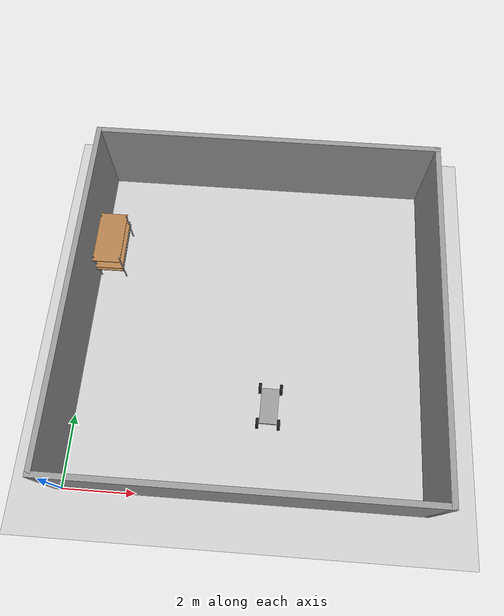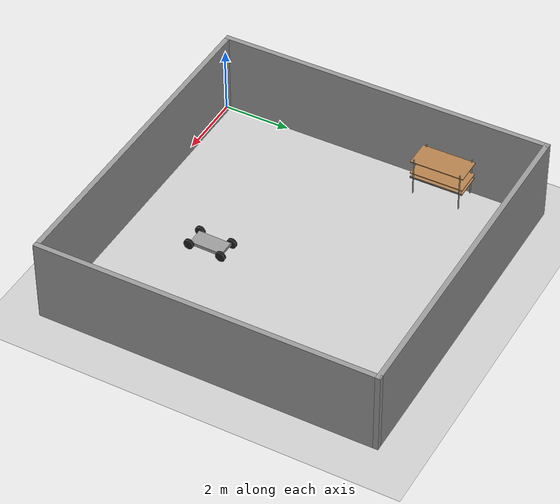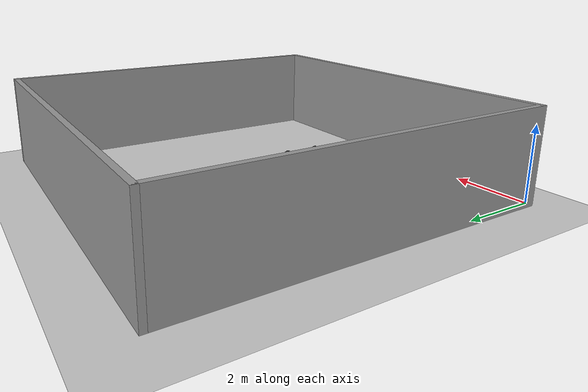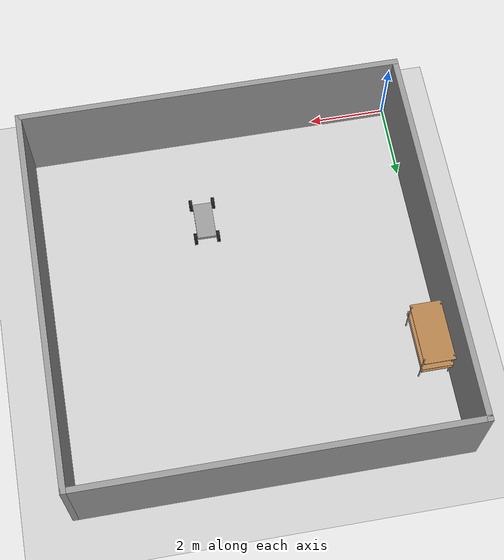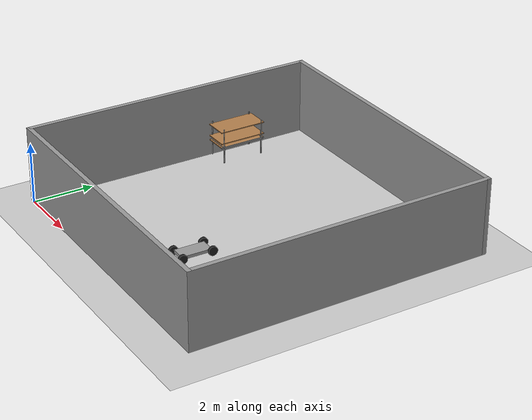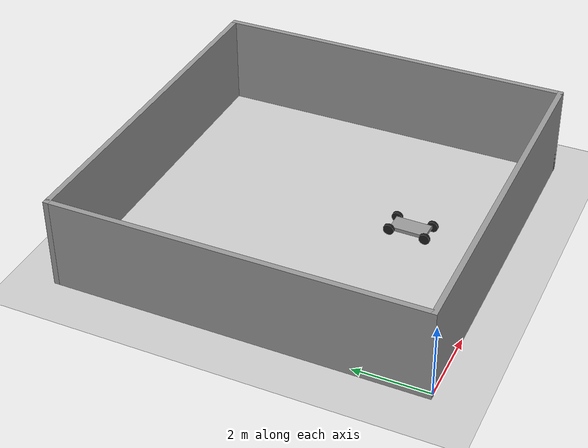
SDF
<sdf version="1.7">
 <world name="default">
  <plugin name="gazebo_ros_control" filename="libgazebo_ros_control.so"/>
  <plugin name="set_entity_state_plugin" filename="libset_entity_state.so">
   <robot_name>dynamic_obsticle</robot_name>
  </plugin>
  <light name="sun" type="directional">
   <pose>0 0 10 0 -0 0</pose>
   <diffuse>0.8 0.8 0.8 1</diffuse>
   <specular>0.2 0.2 0.2 1</specular>
   <attenuation>
    <range>1000</range>
    <constant>0.9</constant>
    <linear>0.01</linear>
    <quadratic>0.001</quadratic>
   </attenuation>
   <direction>-0.5 0.1 -0.9</direction>
   <spot><inner_angle>0</inner_angle><outer_angle>0</outer_angle><falloff>0</falloff></spot>
  </light>
  <model name="ground_plane">
   <static>1</static>
   <link name="link">
    <collision name="collision">
     <geometry><plane><normal>0 0 1</normal><size>100 100</size></plane></geometry>
     <surface><friction><ode><mu>100</mu><mu2>50</mu2></ode></friction></surface>
    </collision>
    <visual name="visual">
     <cast_shadows>0</cast_shadows>
     <geometry><plane><normal>0 0 1</normal><size>100 100</size></plane></geometry>
     <material>
      <script><uri>file://media/materials/scripts/gazebo.material</uri><name>Gazebo/Grey</name></script>
     </material>
    </visual>
   </link>
  </model>
  <gravity>0 0 -9.8</gravity>
  <magnetic_field>6e-06 2.3e-05 -4.2e-05</magnetic_field>
  <atmosphere type="adiabatic"/>
  <physics type="ode">
   <max_step_size>0.001</max_step_size>
   <real_time_factor>1</real_time_factor>
   <real_time_update_rate>1000</real_time_update_rate>
  </physics>
  <scene><ambient>0.4 0.4 0.4 1</ambient><background>0.7 0.7 0.7 1</background><shadows>1</shadows></scene>
  <audio><device>default</device></audio>
  <spherical_coordinates>
   <surface_model>EARTH_WGS84</surface_model>
   <latitude_deg>0</latitude_deg>
   <longitude_deg>0</longitude_deg>
   <elevation>0</elevation>
   <heading_deg>0</heading_deg>
  </spherical_coordinates>
  <model name="inter">
   <pose>4.83241 4.97383 0 0 -0 0</pose>
   <link name="Wall_2">
    <collision name="Wall_2_Collision">
     <geometry><box><size>10 0.15 2.5</size></box></geometry>
     <pose>0 0 1.25 0 -0 0</pose>
    </collision>
    <visual name="Wall_2_Visual">
     <pose>0 0 1.25 0 -0 0</pose>
     <geometry><box><size>10 0.15 2.5</size></box></geometry>
     <material>
      <script><uri>file://media/materials/scripts/gazebo.material</uri><name>Gazebo/Grey</name></script>
      <ambient>1 1 1 1</ambient>
     </material>
     <meta><layer>0</layer></meta>
    </visual>
    <pose>0 -4.925 0 0 -0 0</pose>
   </link>
   <link name="Wall_6">
    <collision name="Wall_6_Collision">
     <geometry><box><size>10 0.15 2.5</size></box></geometry>
     <pose>0 0 1.25 0 -0 0</pose>
    </collision>
    <visual name="Wall_6_Visual">
     <pose>0 0 1.25 0 -0 0</pose>
     <geometry><box><size>10 0.15 2.5</size></box></geometry>
     <material>
      <script><uri>file://media/materials/scripts/gazebo.material</uri><name>Gazebo/Grey</name></script>
      <ambient>1 1 1 1</ambient>
     </material>
     <meta><layer>0</layer></meta>
    </visual>
    <pose>4.925 0 0 0 -0 1.5708</pose>
   </link>
   <link name="Wall_7">
    <collision name="Wall_7_Collision">
     <geometry><box><size>10 0.15 2.5</size></box></geometry>
     <pose>0 0 1.25 0 -0 0</pose>
    </collision>
    <visual name="Wall_7_Visual">
     <pose>0 0 1.25 0 -0 0</pose>
     <geometry><box><size>10 0.15 2.5</size></box></geometry>
     <material>
      <script><uri>file://media/materials/scripts/gazebo.material</uri><name>Gazebo/Grey</name></script>
      <ambient>1 1 1 1</ambient>
     </material>
     <meta><layer>0</layer></meta>
    </visual>
    <pose>0 4.925 0 0 -0 3.14159</pose>
   </link>
   <link name="Wall_8">
    <collision name="Wall_8_Collision">
     <geometry><box><size>10 0.15 2.5</size></box></geometry>
     <pose>0 0 1.25 0 -0 0</pose>
    </collision>
    <visual name="Wall_8_Visual">
     <pose>0 0 1.25 0 -0 0</pose>
     <geometry><box><size>10 0.15 2.5</size></box></geometry>
     <material>
      <script><uri>file://media/materials/scripts/gazebo.material</uri><name>Gazebo/Grey</name></script>
      <ambient>1 1 1 1</ambient>
     </material>
     <meta><layer>0</layer></meta>
    </visual>
    <pose>-4.925 0 0 0 -0 -1.5708</pose>
   </link>
   <static>1</static>
  </model>
  <model name="warehouse_pallet">
   <link name="warehouse_pallet::link">
    <pose>0 0 -0 0 -0 1.57</pose>
    <inertial>
     <inertia>
      <ixx>0.0267042</ixx>
      <ixy>0</ixy>
      <ixz>0</ixz>
      <iyy>0.0937875</iyy>
      <iyz>0</iyz>
      <izz>0.120417</izz>
     </inertia>
     <mass>0.1</mass>
    </inertial>
    <visual name="holding1_visual">
     <pose>0 0.39 0.45 0 -0 0</pose>
     <geometry><box><size>1.6 0.02 0.05</size></box></geometry>
     <material>
      <script><uri>file://media/materials/scripts/gazebo.material</uri><name>Gazebo/Grey</name></script>
      <shader type="pixel"><normal_map>__default__</normal_map></shader>
      <ambient>0.3 0.3 0.3 1</ambient>
      <diffuse>0.7 0.7 0.7 1</diffuse>
      <specular>0.01 0.01 0.01 1</specular>
      <emissive>0 0 0 1</emissive>
     </material>
    </visual>
    <visual name="front_left_leg">
     <pose>0.7 0.38 0.5 0 -0 0</pose>
     <geometry><cylinder><radius>0.02</radius><length>1.2</length></cylinder></geometry>
     <material>
      <script><uri>file://media/materials/scripts/gazebo.material</uri><name>Gazebo/Grey</name></script>
      <shader type="pixel"><normal_map>__default__</normal_map></shader>
      <ambient>0.3 0.3 0.3 1</ambient>
      <diffuse>0.7 0.7 0.7 1</diffuse>
      <specular>0.01 0.01 0.01 1</specular>
      <emissive>0 0 0 1</emissive>
     </material>
    </visual>
    <visual name="front_right_leg">
     <pose>0.7 -0.38 0.5 0 -0 0</pose>
     <geometry><cylinder><radius>0.02</radius><length>1.2</length></cylinder></geometry>
     <material>
      <script><uri>file://media/materials/scripts/gazebo.material</uri><name>Gazebo/Grey</name></script>
      <shader type="pixel"><normal_map>__default__</normal_map></shader>
      <ambient>0.3 0.3 0.3 1</ambient>
      <diffuse>0.7 0.7 0.7 1</diffuse>
      <specular>0.01 0.01 0.01 1</specular>
      <emissive>0 0 0 1</emissive>
     </material>
    </visual>
    <visual name="back_right_leg">
     <pose>-0.7 -0.38 0.5 0 -0 0</pose>
     <geometry><cylinder><radius>0.02</radius><length>1.2</length></cylinder></geometry>
     <material>
      <script><uri>file://media/materials/scripts/gazebo.material</uri><name>Gazebo/Grey</name></script>
      <shader type="pixel"><normal_map>__default__</normal_map></shader>
      <ambient>0.3 0.3 0.3 1</ambient>
      <diffuse>0.7 0.7 0.7 1</diffuse>
      <specular>0.01 0.01 0.01 1</specular>
      <emissive>0 0 0 1</emissive>
     </material>
    </visual>
    <visual name="back_left_leg">
     <pose>-0.7 0.38 0.5 0 -0 0</pose>
     <geometry><cylinder><radius>0.02</radius><length>1.2</length></cylinder></geometry>
     <material>
      <script><uri>file://media/materials/scripts/gazebo.material</uri><name>Gazebo/Grey</name></script>
      <shader type="pixel"><normal_map>__default__</normal_map></shader>
      <ambient>0.3 0.3 0.3 1</ambient>
      <diffuse>0.7 0.7 0.7 1</diffuse>
      <specular>0.01 0.01 0.01 1</specular>
      <emissive>0 0 0 1</emissive>
     </material>
    </visual>
    <visual name="visual1">
     <pose>0 0 0.45 0 -0 0</pose>
     <geometry><box><size>1.6 0.8 0.03</size></box></geometry>
     <material>
      <script><uri>file://media/materials/scripts/gazebo.material</uri><name>Gazebo/Wood</name></script>
      <shader type="pixel"><normal_map>__default__</normal_map></shader>
      <ambient>1 1 1 1</ambient>
      <diffuse>1 1 1 1</diffuse>
      <specular>0.2 0.2 0.2 1</specular>
      <emissive>0 0 0 1</emissive>
     </material>
    </visual>
    <visual name="holding2_visual">
     <pose>0 -0.39 0.45 0 -0 0</pose>
     <geometry><box><size>1.6 0.02 0.05</size></box></geometry>
     <material>
      <script><uri>file://media/materials/scripts/gazebo.material</uri><name>Gazebo/Grey</name></script>
      <shader type="pixel"><normal_map>__default__</normal_map></shader>
      <ambient>0.3 0.3 0.3 1</ambient>
      <diffuse>0.7 0.7 0.7 1</diffuse>
      <specular>0.01 0.01 0.01 1</specular>
      <emissive>0 0 0 1</emissive>
     </material>
    </visual>
    <visual name="holding3_visual">
     <pose>0.735 0 0.45 0 -0 1.57</pose>
     <geometry><box><size>0.8 0.02 0.05</size></box></geometry>
     <material>
      <script><uri>file://media/materials/scripts/gazebo.material</uri><name>Gazebo/Grey</name></script>
      <shader type="pixel"><normal_map>__default__</normal_map></shader>
      <ambient>0.3 0.3 0.3 1</ambient>
      <diffuse>0.7 0.7 0.7 1</diffuse>
      <specular>0.01 0.01 0.01 1</specular>
      <emissive>0 0 0 1</emissive>
     </material>
    </visual>
    <visual name="holding4_visual">
     <pose>-0.735 0 0.45 0 -0 1.57</pose>
     <geometry><box><size>0.8 0.02 0.05</size></box></geometry>
     <material>
      <script><uri>file://media/materials/scripts/gazebo.material</uri><name>Gazebo/Grey</name></script>
      <shader type="pixel"><normal_map>__default__</normal_map></shader>
      <ambient>0.3 0.3 0.3 1</ambient>
      <diffuse>0.7 0.7 0.7 1</diffuse>
      <specular>0.01 0.01 0.01 1</specular>
      <emissive>0 0 0 1</emissive>
     </material>
    </visual>
    <visual name="visual2">
     <pose>0 0 0.6 0 -0 0</pose>
     <geometry><box><size>1.6 0.8 0.03</size></box></geometry>
     <material>
      <script><uri>file://media/materials/scripts/gazebo.material</uri><name>Gazebo/Wood</name></script>
      <shader type="pixel"><normal_map>__default__</normal_map></shader>
      <ambient>1 1 1 1</ambient>
      <diffuse>1 1 1 1</diffuse>
      <specular>0.2 0.2 0.2 1</specular>
      <emissive>0 0 0 1</emissive>
     </material>
    </visual>
    <visual name="visual3">
     <pose>0 0 1 0 -0 0</pose>
     <geometry><box><size>1.6 0.8 0.03</size></box></geometry>
     <material>
      <script><uri>file://media/materials/scripts/gazebo.material</uri><name>Gazebo/Wood</name></script>
      <shader type="pixel"><normal_map>__default__</normal_map></shader>
      <ambient>1 1 1 1</ambient>
      <diffuse>1 1 1 1</diffuse>
      <specular>0.2 0.2 0.2 1</specular>
      <emissive>0 0 0 1</emissive>
     </material>
    </visual>
    <collision name="surface1">
     <pose>0 0 0.45 0 -0 0</pose>
     <geometry><box><size>1.6 0.8 0.03</size></box></geometry>
     <surface>
      <friction>
       <ode><mu>20</mu><mu2>20</mu2><fdir1>0 0 0</fdir1><slip1>0</slip1><slip2>0</slip2></ode>
       <torsional>
        <coefficient>1</coefficient>
        <patch_radius>0</patch_radius>
        <surface_radius>0</surface_radius>
        <use_patch_radius>1</use_patch_radius>
        <ode><slip>0</slip></ode>
       </torsional>
      </friction>
      <bounce><restitution_coefficient>0</restitution_coefficient><threshold>1e+06</threshold></bounce>
      <contact>
       <collide_without_contact>0</collide_without_contact>
       <collide_without_contact_bitmask>1</collide_without_contact_bitmask>
       <collide_bitmask>1</collide_bitmask>
       <ode>
        <soft_cfm>0</soft_cfm>
        <soft_erp>0.2</soft_erp>
        <kp>1e+13</kp>
        <kd>1</kd>
        <max_vel>0.01</max_vel>
        <min_depth>0</min_depth>
       </ode>
       <bullet>
        <split_impulse>1</split_impulse>
        <split_impulse_penetration_threshold>-0.01</split_impulse_penetration_threshold>
        <soft_cfm>0</soft_cfm>
        <soft_erp>0.2</soft_erp>
        <kp>1e+13</kp>
        <kd>1</kd>
       </bullet>
      </contact>
     </surface>
    </collision>
    <collision name="holding1_collision">
     <pose>0 0.39 0.45 0 -0 0</pose>
     <geometry><box><size>1.6 0.02 0.05</size></box></geometry>
     <surface>
      <friction>
       <ode><mu>1e+09</mu><mu2>1e+09</mu2><fdir1>0 0 0</fdir1><slip1>0</slip1><slip2>0</slip2></ode>
       <torsional>
        <coefficient>1</coefficient>
        <patch_radius>0</patch_radius>
        <surface_radius>0</surface_radius>
        <use_patch_radius>1</use_patch_radius>
        <ode><slip>0</slip></ode>
       </torsional>
      </friction>
      <bounce><restitution_coefficient>0</restitution_coefficient><threshold>1e+06</threshold></bounce>
      <contact>
       <collide_without_contact>0</collide_without_contact>
       <collide_without_contact_bitmask>1</collide_without_contact_bitmask>
       <collide_bitmask>1</collide_bitmask>
       <ode>
        <soft_cfm>0</soft_cfm>
        <soft_erp>0.2</soft_erp>
        <kp>1e+13</kp>
        <kd>1</kd>
        <max_vel>0.01</max_vel>
        <min_depth>0</min_depth>
       </ode>
       <bullet>
        <split_impulse>1</split_impulse>
        <split_impulse_penetration_threshold>-0.01</split_impulse_penetration_threshold>
        <soft_cfm>0</soft_cfm>
        <soft_erp>0.2</soft_erp>
        <kp>1e+13</kp>
        <kd>1</kd>
       </bullet>
      </contact>
     </surface>
    </collision>
    <collision name="holding2_collision">
     <pose>0 -0.39 0.45 0 -0 0</pose>
     <geometry><box><size>1.6 0.02 0.05</size></box></geometry>
     <surface>
      <friction>
       <ode><mu>1e+09</mu><mu2>1e+09</mu2><fdir1>0 0 0</fdir1><slip1>0</slip1><slip2>0</slip2></ode>
       <torsional>
        <coefficient>1</coefficient>
        <patch_radius>0</patch_radius>
        <surface_radius>0</surface_radius>
        <use_patch_radius>1</use_patch_radius>
        <ode><slip>0</slip></ode>
       </torsional>
      </friction>
      <bounce><restitution_coefficient>0</restitution_coefficient><threshold>1e+06</threshold></bounce>
      <contact>
       <collide_without_contact>0</collide_without_contact>
       <collide_without_contact_bitmask>1</collide_without_contact_bitmask>
       <collide_bitmask>1</collide_bitmask>
       <ode>
        <soft_cfm>0</soft_cfm>
        <soft_erp>0.2</soft_erp>
        <kp>1e+13</kp>
        <kd>1</kd>
        <max_vel>0.01</max_vel>
        <min_depth>0</min_depth>
       </ode>
       <bullet>
        <split_impulse>1</split_impulse>
        <split_impulse_penetration_threshold>-0.01</split_impulse_penetration_threshold>
        <soft_cfm>0</soft_cfm>
        <soft_erp>0.2</soft_erp>
        <kp>1e+13</kp>
        <kd>1</kd>
       </bullet>
      </contact>
     </surface>
    </collision>
    <collision name="holding3_collision">
     <pose>0.735 0 0.45 0 -0 1.57</pose>
     <geometry><box><size>0.8 0.02 0.05</size></box></geometry>
     <surface>
      <friction>
       <ode><mu>1e+09</mu><mu2>1e+09</mu2><fdir1>0 0 0</fdir1><slip1>0</slip1><slip2>0</slip2></ode>
       <torsional>
        <coefficient>1</coefficient>
        <patch_radius>0</patch_radius>
        <surface_radius>0</surface_radius>
        <use_patch_radius>1</use_patch_radius>
        <ode><slip>0</slip></ode>
       </torsional>
      </friction>
      <bounce><restitution_coefficient>0</restitution_coefficient><threshold>1e+06</threshold></bounce>
      <contact>
       <collide_without_contact>0</collide_without_contact>
       <collide_without_contact_bitmask>1</collide_without_contact_bitmask>
       <collide_bitmask>1</collide_bitmask>
       <ode>
        <soft_cfm>0</soft_cfm>
        <soft_erp>0.2</soft_erp>
        <kp>1e+13</kp>
        <kd>1</kd>
        <max_vel>0.01</max_vel>
        <min_depth>0</min_depth>
       </ode>
       <bullet>
        <split_impulse>1</split_impulse>
        <split_impulse_penetration_threshold>-0.01</split_impulse_penetration_threshold>
        <soft_cfm>0</soft_cfm>
        <soft_erp>0.2</soft_erp>
        <kp>1e+13</kp>
        <kd>1</kd>
       </bullet>
      </contact>
     </surface>
    </collision>
    <collision name="holding4_collision">
     <pose>-0.735 0 0.45 0 -0 1.57</pose>
     <geometry><box><size>0.8 0.02 0.05</size></box></geometry>
     <surface>
      <friction>
       <ode><mu>1e+09</mu><mu2>1e+09</mu2><fdir1>0 0 0</fdir1><slip1>0</slip1><slip2>0</slip2></ode>
       <torsional>
        <coefficient>1</coefficient>
        <patch_radius>0</patch_radius>
        <surface_radius>0</surface_radius>
        <use_patch_radius>1</use_patch_radius>
        <ode><slip>0</slip></ode>
       </torsional>
      </friction>
      <bounce><restitution_coefficient>0</restitution_coefficient><threshold>1e+06</threshold></bounce>
      <contact>
       <collide_without_contact>0</collide_without_contact>
       <collide_without_contact_bitmask>1</collide_without_contact_bitmask>
       <collide_bitmask>1</collide_bitmask>
       <ode>
        <soft_cfm>0</soft_cfm>
        <soft_erp>0.2</soft_erp>
        <kp>1e+13</kp>
        <kd>1</kd>
        <max_vel>0.01</max_vel>
        <min_depth>0</min_depth>
       </ode>
       <bullet>
        <split_impulse>1</split_impulse>
        <split_impulse_penetration_threshold>-0.01</split_impulse_penetration_threshold>
        <soft_cfm>0</soft_cfm>
        <soft_erp>0.2</soft_erp>
        <kp>1e+13</kp>
        <kd>1</kd>
       </bullet>
      </contact>
     </surface>
    </collision>
    <collision name="surface3">
     <pose>0 0 1 0 -0 0</pose>
     <geometry><box><size>1.6 0.8 0.03</size></box></geometry>
     <surface>
      <friction>
       <ode><mu>2.5</mu><mu2>2.5</mu2><fdir1>0 0 0</fdir1><slip1>0</slip1><slip2>0</slip2></ode>
       <torsional>
        <coefficient>1</coefficient>
        <patch_radius>0</patch_radius>
        <surface_radius>0</surface_radius>
        <use_patch_radius>1</use_patch_radius>
        <ode><slip>0</slip></ode>
       </torsional>
      </friction>
      <bounce><restitution_coefficient>0</restitution_coefficient><threshold>1e+06</threshold></bounce>
      <contact>
       <collide_without_contact>0</collide_without_contact>
       <collide_without_contact_bitmask>1</collide_without_contact_bitmask>
       <collide_bitmask>1</collide_bitmask>
       <ode>
        <soft_cfm>0</soft_cfm>
        <soft_erp>0.2</soft_erp>
        <kp>1e+13</kp>
        <kd>1</kd>
        <max_vel>0.01</max_vel>
        <min_depth>0</min_depth>
       </ode>
       <bullet>
        <split_impulse>1</split_impulse>
        <split_impulse_penetration_threshold>-0.01</split_impulse_penetration_threshold>
        <soft_cfm>0</soft_cfm>
        <soft_erp>0.2</soft_erp>
        <kp>1e+13</kp>
        <kd>1</kd>
       </bullet>
      </contact>
     </surface>
    </collision>
    <collision name="surface2">
     <pose>0 0 0.6 0 -0 0</pose>
     <geometry><box><size>1.6 0.8 0.03</size></box></geometry>
     <surface>
      <friction>
       <ode><mu>2.5</mu><mu2>2.5</mu2><fdir1>0 0 0</fdir1><slip1>0</slip1><slip2>0</slip2></ode>
       <torsional>
        <coefficient>1</coefficient>
        <patch_radius>0</patch_radius>
        <surface_radius>0</surface_radius>
        <use_patch_radius>1</use_patch_radius>
        <ode><slip>0</slip></ode>
       </torsional>
      </friction>
      <bounce><restitution_coefficient>0</restitution_coefficient><threshold>1e+06</threshold></bounce>
      <contact>
       <collide_without_contact>0</collide_without_contact>
       <collide_without_contact_bitmask>1</collide_without_contact_bitmask>
       <collide_bitmask>1</collide_bitmask>
       <ode>
        <soft_cfm>0</soft_cfm>
        <soft_erp>0.2</soft_erp>
        <kp>1e+13</kp>
        <kd>1</kd>
        <max_vel>0.01</max_vel>
        <min_depth>0</min_depth>
       </ode>
       <bullet>
        <split_impulse>1</split_impulse>
        <split_impulse_penetration_threshold>-0.01</split_impulse_penetration_threshold>
        <soft_cfm>0</soft_cfm>
        <soft_erp>0.2</soft_erp>
        <kp>1e+13</kp>
        <kd>1</kd>
       </bullet>
      </contact>
     </surface>
    </collision>
    <collision name="front_right_leg">
     <pose>0.7 -0.38 0.5 0 -0 0</pose>
     <geometry><cylinder><radius>0.02</radius><length>1</length></cylinder></geometry>
     <surface>
      <friction>
       <ode><mu>0.1</mu><mu2>0.1</mu2><fdir1>0 0 0</fdir1><slip1>0</slip1><slip2>0</slip2></ode>
       <torsional>
        <coefficient>1</coefficient>
        <patch_radius>0</patch_radius>
        <surface_radius>0</surface_radius>
        <use_patch_radius>1</use_patch_radius>
        <ode><slip>0</slip></ode>
       </torsional>
      </friction>
      <bounce><restitution_coefficient>0</restitution_coefficient><threshold>1e+06</threshold></bounce>
      <contact>
       <collide_without_contact>0</collide_without_contact>
       <collide_without_contact_bitmask>1</collide_without_contact_bitmask>
       <collide_bitmask>1</collide_bitmask>
       <ode>
        <soft_cfm>0</soft_cfm>
        <soft_erp>0.2</soft_erp>
        <kp>1e+13</kp>
        <kd>1</kd>
        <max_vel>0.01</max_vel>
        <min_depth>0</min_depth>
       </ode>
       <bullet>
        <split_impulse>1</split_impulse>
        <split_impulse_penetration_threshold>-0.01</split_impulse_penetration_threshold>
        <soft_cfm>0</soft_cfm>
        <soft_erp>0.2</soft_erp>
        <kp>1e+13</kp>
        <kd>1</kd>
       </bullet>
      </contact>
     </surface>
    </collision>
    <collision name="back_right_leg">
     <pose>-0.7 -0.38 0.5 0 -0 0</pose>
     <geometry><cylinder><radius>0.02</radius><length>1.2</length></cylinder></geometry>
     <surface>
      <friction>
       <ode><mu>0.1</mu><mu2>0.1</mu2><fdir1>0 0 0</fdir1><slip1>0</slip1><slip2>0</slip2></ode>
       <torsional>
        <coefficient>1</coefficient>
        <patch_radius>0</patch_radius>
        <surface_radius>0</surface_radius>
        <use_patch_radius>1</use_patch_radius>
        <ode><slip>0</slip></ode>
       </torsional>
      </friction>
      <bounce><restitution_coefficient>0</restitution_coefficient><threshold>1e+06</threshold></bounce>
      <contact>
       <collide_without_contact>0</collide_without_contact>
       <collide_without_contact_bitmask>1</collide_without_contact_bitmask>
       <collide_bitmask>1</collide_bitmask>
       <ode>
        <soft_cfm>0</soft_cfm>
        <soft_erp>0.2</soft_erp>
        <kp>1e+13</kp>
        <kd>1</kd>
        <max_vel>0.01</max_vel>
        <min_depth>0</min_depth>
       </ode>
       <bullet>
        <split_impulse>1</split_impulse>
        <split_impulse_penetration_threshold>-0.01</split_impulse_penetration_threshold>
        <soft_cfm>0</soft_cfm>
        <soft_erp>0.2</soft_erp>
        <kp>1e+13</kp>
        <kd>1</kd>
       </bullet>
      </contact>
     </surface>
    </collision>
    <collision name="front_left_leg">
     <pose>0.7 0.38 0.5 0 -0 0</pose>
     <geometry><cylinder><radius>0.02</radius><length>1.2</length></cylinder></geometry>
     <surface>
      <friction>
       <ode><mu>0.1</mu><mu2>0.1</mu2><fdir1>0 0 0</fdir1><slip1>0</slip1><slip2>0</slip2></ode>
       <torsional>
        <coefficient>1</coefficient>
        <patch_radius>0</patch_radius>
        <surface_radius>0</surface_radius>
        <use_patch_radius>1</use_patch_radius>
        <ode><slip>0</slip></ode>
       </torsional>
      </friction>
      <bounce><restitution_coefficient>0</restitution_coefficient><threshold>1e+06</threshold></bounce>
      <contact>
       <collide_without_contact>0</collide_without_contact>
       <collide_without_contact_bitmask>1</collide_without_contact_bitmask>
       <collide_bitmask>1</collide_bitmask>
       <ode>
        <soft_cfm>0</soft_cfm>
        <soft_erp>0.2</soft_erp>
        <kp>1e+13</kp>
        <kd>1</kd>
        <max_vel>0.01</max_vel>
        <min_depth>0</min_depth>
       </ode>
       <bullet>
        <split_impulse>1</split_impulse>
        <split_impulse_penetration_threshold>-0.01</split_impulse_penetration_threshold>
        <soft_cfm>0</soft_cfm>
        <soft_erp>0.2</soft_erp>
        <kp>1e+13</kp>
        <kd>1</kd>
       </bullet>
      </contact>
     </surface>
    </collision>
    <collision name="back_left_leg">
     <pose>-0.7 0.38 0.5 0 -0 0</pose>
     <geometry><cylinder><radius>0.02</radius><length>1.2</length></cylinder></geometry>
     <surface>
      <friction>
       <ode><mu>0.1</mu><mu2>0.1</mu2><fdir1>0 0 0</fdir1><slip1>0</slip1><slip2>0</slip2></ode>
       <torsional>
        <coefficient>1</coefficient>
        <patch_radius>0</patch_radius>
        <surface_radius>0</surface_radius>
        <use_patch_radius>1</use_patch_radius>
        <ode><slip>0</slip></ode>
       </torsional>
      </friction>
      <bounce><restitution_coefficient>0</restitution_coefficient><threshold>1e+06</threshold></bounce>
      <contact>
       <collide_without_contact>0</collide_without_contact>
       <collide_without_contact_bitmask>1</collide_without_contact_bitmask>
       <collide_bitmask>1</collide_bitmask>
       <ode>
        <soft_cfm>0</soft_cfm>
        <soft_erp>0.2</soft_erp>
        <kp>1e+13</kp>
        <kd>1</kd>
        <max_vel>0.01</max_vel>
        <min_depth>0</min_depth>
       </ode>
       <bullet>
        <split_impulse>1</split_impulse>
        <split_impulse_penetration_threshold>-0.01</split_impulse_penetration_threshold>
        <soft_cfm>0</soft_cfm>
        <soft_erp>0.2</soft_erp>
        <kp>1e+13</kp>
        <kd>1</kd>
       </bullet>
      </contact>
     </surface>
    </collision>
   </link>
   <static>0</static>
   <pose>0.391291 7.09971 0.099998 -3e-06 -0 -3.13856</pose>
  </model>
  <model name="cart_front_steer">
   <link name="chassis">
    <pose>0 0 0.15 0 -0 0</pose>
    <inertial>
     <pose>0.1 0 0 0 -0 0</pose>
     <mass>10</mass>
     <inertia>
      <ixx>0.216667</ixx>
      <iyy>0.841667</iyy>
      <izz>1.04167</izz>
      <ixy>0</ixy>
      <ixz>0</ixz>
      <iyz>0</iyz>
     </inertia>
    </inertial>
    <collision name="collision"><geometry><box><size>1 0.5 0.1</size></box></geometry></collision>
    <visual name="visual">
     <geometry><box><size>1 0.5 0.1</size></box></geometry>
     <material>
      <script><uri>file://media/materials/scripts/gazebo.material</uri><name>Gazebo/Grey</name></script>
     </material>
    </visual>
   </link>
   <link name="wheel_front_left">
    <pose>0.5 0.298 0.15 -1.5708 -0.087266 0</pose>
    <inertial>
     <mass>0.5</mass>
     <inertia>
      <ixx>0.00307917</ixx>
      <iyy>0.00307917</iyy>
      <izz>0.005625</izz>
      <ixy>0</ixy>
      <ixz>0</ixz>
      <iyz>0</iyz>
     </inertia>
    </inertial>
    <collision name="collision">
     <geometry><cylinder><radius>0.15</radius><length>0.08</length></cylinder></geometry>
    </collision>
    <visual name="visual">
     <geometry><cylinder><radius>0.15</radius><length>0.08</length></cylinder></geometry>
     <material>
      <script><uri>file://media/materials/scripts/gazebo.material</uri><name>Gazebo/Black</name></script>
     </material>
    </visual>
   </link>
   <joint name="wheel_front_left_steer_spin" type="universal">
    <parent>chassis</parent>
    <child>wheel_front_left</child>
    <axis>
     <xyz>0 -1 0</xyz>
     <limit><lower>-0.610865</lower><upper>0.610865</upper></limit>
     <dynamics><spring_reference>0</spring_reference><spring_stiffness>0</spring_stiffness></dynamics>
    </axis>
    <axis2>
     <xyz>0 0 1</xyz>
     <limit><upper>1e+16</upper><lower>-1e+16</lower></limit>
     <dynamics><spring_reference>0</spring_reference><spring_stiffness>0</spring_stiffness></dynamics>
    </axis2>
   </joint>
   <link name="wheel_front_right">
    <pose>0.5 -0.298 0.15 -1.5708 -0.087266 0</pose>
    <inertial>
     <mass>0.5</mass>
     <inertia>
      <ixx>0.00307917</ixx>
      <iyy>0.00307917</iyy>
      <izz>0.005625</izz>
      <ixy>0</ixy>
      <ixz>0</ixz>
      <iyz>0</iyz>
     </inertia>
    </inertial>
    <collision name="collision">
     <geometry><cylinder><radius>0.15</radius><length>0.08</length></cylinder></geometry>
    </collision>
    <visual name="visual">
     <geometry><cylinder><radius>0.15</radius><length>0.08</length></cylinder></geometry>
     <material>
      <script><uri>file://media/materials/scripts/gazebo.material</uri><name>Gazebo/Black</name></script>
     </material>
    </visual>
   </link>
   <joint name="wheel_front_right_steer_spin" type="universal">
    <parent>chassis</parent>
    <child>wheel_front_right</child>
    <axis>
     <xyz>0 -1 0</xyz>
     <limit><lower>-0.610865</lower><upper>0.610865</upper></limit>
     <dynamics><spring_reference>0</spring_reference><spring_stiffness>0</spring_stiffness></dynamics>
    </axis>
    <axis2>
     <xyz>0 0 1</xyz>
     <limit><upper>1e+16</upper><lower>-1e+16</lower></limit>
     <dynamics><spring_reference>0</spring_reference><spring_stiffness>0</spring_stiffness></dynamics>
    </axis2>
   </joint>
   <link name="wheel_rear_left">
    <pose>-0.5 0.298 0.15 -1.5708 0 0</pose>
    <inertial>
     <mass>0.5</mass>
     <inertia>
      <ixx>0.00307917</ixx>
      <iyy>0.00307917</iyy>
      <izz>0.005625</izz>
      <ixy>0</ixy>
      <ixz>0</ixz>
      <iyz>0</iyz>
     </inertia>
    </inertial>
    <collision name="collision">
     <geometry><cylinder><radius>0.15</radius><length>0.08</length></cylinder></geometry>
    </collision>
    <visual name="visual">
     <geometry><cylinder><radius>0.15</radius><length>0.08</length></cylinder></geometry>
     <material>
      <script><uri>file://media/materials/scripts/gazebo.material</uri><name>Gazebo/Black</name></script>
     </material>
    </visual>
   </link>
   <joint name="wheel_rear_left_spin" type="revolute">
    <parent>chassis</parent>
    <child>wheel_rear_left</child>
    <axis>
     <xyz>0 0 1</xyz>
     <limit><lower>-1e+16</lower><upper>1e+16</upper></limit>
     <dynamics><spring_reference>0</spring_reference><spring_stiffness>0</spring_stiffness></dynamics>
    </axis>
   </joint>
   <link name="wheel_rear_right">
    <pose>-0.5 -0.298 0.15 -1.5708 0 0</pose>
    <inertial>
     <mass>0.5</mass>
     <inertia>
      <ixx>0.00307917</ixx>
      <iyy>0.00307917</iyy>
      <izz>0.005625</izz>
      <ixy>0</ixy>
      <ixz>0</ixz>
      <iyz>0</iyz>
     </inertia>
    </inertial>
    <collision name="collision">
     <geometry><cylinder><radius>0.15</radius><length>0.08</length></cylinder></geometry>
    </collision>
    <visual name="visual">
     <geometry><cylinder><radius>0.15</radius><length>0.08</length></cylinder></geometry>
     <material>
      <script><uri>file://media/materials/scripts/gazebo.material</uri><name>Gazebo/Black</name></script>
     </material>
    </visual>
   </link>
   <joint name="wheel_rear_right_spin" type="revolute">
    <parent>chassis</parent>
    <child>wheel_rear_right</child>
    <axis>
     <xyz>0 0 1</xyz>
     <limit><lower>-1e+16</lower><upper>1e+16</upper></limit>
     <dynamics><spring_reference>0</spring_reference><spring_stiffness>0</spring_stiffness></dynamics>
    </axis>
   </joint>
   <pose>5.41726 2.6046 -7e-06 -1e-06 -1.4e-05 1.55163</pose>
  </model>
 </world>
</sdf>
